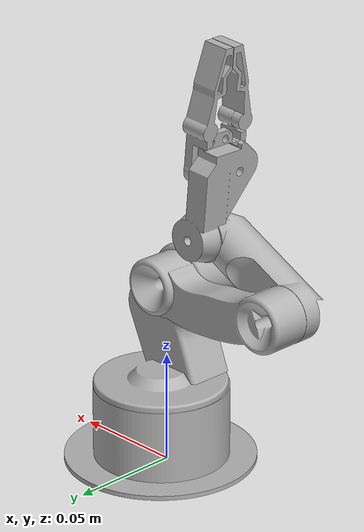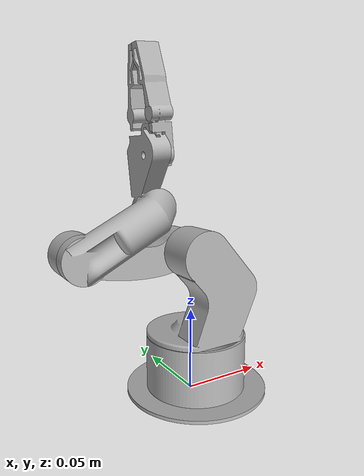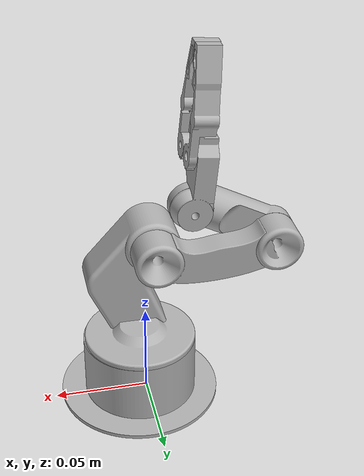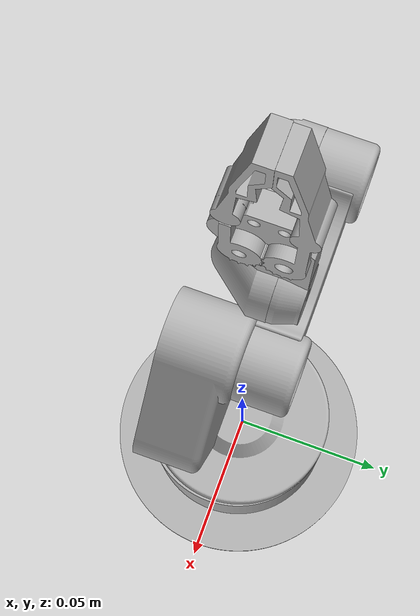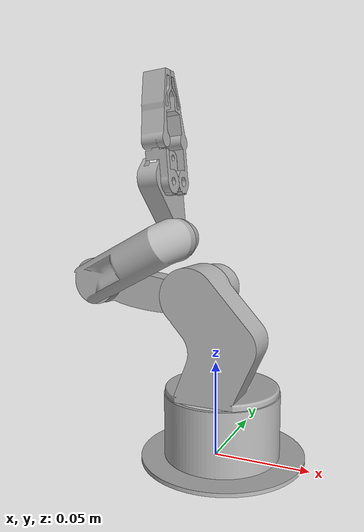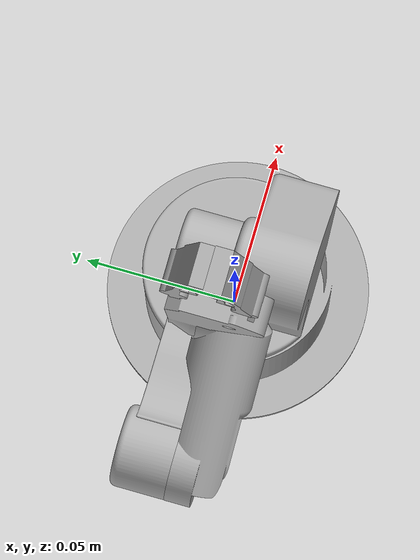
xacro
<?xml version="1.0" ?>
<robot name="tentacle" xmlns:xacro="http://www.ros.org/wiki/xacro">

  <xacro:arg name="is_ignition" default="true"/>

  <xacro:include filename="$(find tentacle_description)/urdf/materials.xacro" />
  <xacro:include filename="$(find tentacle_description)/urdf/tentacle.gazebo" />
  <xacro:include filename="$(find tentacle_description)/urdf/tentacle_gazebo.xacro"/>
  <xacro:include filename="$(find tentacle_description)/urdf/tentacle_ros2_control.xacro" />

  <link name="world"/>

  <link name="base_link">
  <inertial>
    <origin xyz="0.003724544668107693 -4.130614845030881e-05 0.01152842135935003" rpy="0 0 0"/>
    <mass value="0.19623937823714263"/>
    <inertia ixx="0.000109" iyy="0.000113" izz="0.000164" ixy="-0.0" iyz="0.0" ixz="0.0"/>
  </inertial>
  <visual>
    <origin xyz="0 0 0" rpy="0 0 0"/>
    <geometry>
      <mesh filename="file://$(find tentacle_description)/meshes/base_link.stl" scale="0.001 0.001 0.001"/>
    </geometry>
    <material name="silver"/>
  </visual>
  <collision>
    <origin xyz="0 0 0" rpy="0 0 0"/>
    <geometry>
      <mesh filename="file://$(find tentacle_description)/meshes/base_link.stl" scale="0.001 0.001 0.001"/>
    </geometry>
  </collision>
</link>

<link name="center_1">
  <inertial>
    <origin xyz="0.0005464556457603978 -0.009747922577617613 0.024151658053259528" rpy="0 0 0"/>
    <mass value="0.2351503258769467"/>
    <inertia ixx="0.000143" iyy="0.000149" izz="7.6e-05" ixy="1e-06" iyz="2.4e-05" ixz="1.1e-05"/>
  </inertial>
  <visual>
    <origin xyz="-0.003249 -0.000454 -0.035" rpy="0 0 0"/>
    <geometry>
      <mesh filename="file://$(find tentacle_description)/meshes/center_1.stl" scale="0.001 0.001 0.001"/>
    </geometry>
    <material name="silver"/>
  </visual>
  <collision>
    <origin xyz="-0.003249 -0.000454 -0.035" rpy="0 0 0"/>
    <geometry>
      <mesh filename="file://$(find tentacle_description)/meshes/center_1.stl" scale="0.001 0.001 0.001"/>
    </geometry>
  </collision>
</link>

<link name="forearm_1">
  <inertial>
    <origin xyz="-0.031218380690437288 0.007383848756651429 -0.0009929701931967044" rpy="0 0 0"/>
    <mass value="0.19326138616796915"/>
    <inertia ixx="1.2e-05" iyy="0.000131" izz="0.000126" ixy="0.0" iyz="-0.0" ixz="5e-06"/>
  </inertial>
  <visual>
    <origin xyz="0.005216 0.001003 -0.087273" rpy="0 0 0"/>
    <geometry>
      <mesh filename="file://$(find tentacle_description)/meshes/forearm_1.stl" scale="0.001 0.001 0.001"/>
    </geometry>
    <material name="silver"/>
  </visual>
  <collision>
    <origin xyz="0.005216 0.001003 -0.087273" rpy="0 0 0"/>
    <geometry>
      <mesh filename="file://$(find tentacle_description)/meshes/forearm_1.stl" scale="0.001 0.001 0.001"/>
    </geometry>
  </collision>
</link>

<link name="arm_1">
  <inertial>
    <origin xyz="0.023921782876469046 -0.005943519652805075 0.012450684397181486" rpy="0 0 0"/>
    <mass value="0.15653561331279695"/>
    <inertia ixx="1.9e-05" iyy="5.8e-05" izz="4.6e-05" ixy="-0.0" iyz="-0.0" ixz="-1.9e-05"/>
  </inertial>
  <visual>
    <origin xyz="0.067469 0.001003 -0.089531" rpy="0 0 0"/>
    <geometry>
      <mesh filename="file://$(find tentacle_description)/meshes/arm_1.stl" scale="0.001 0.001 0.001"/>
    </geometry>
    <material name="silver"/>
  </visual>
  <collision>
    <origin xyz="0.067469 0.001003 -0.089531" rpy="0 0 0"/>
    <geometry>
      <mesh filename="file://$(find tentacle_description)/meshes/arm_1.stl" scale="0.001 0.001 0.001"/>
    </geometry>
  </collision>
</link>

<link name="gripper_base_1">
  <inertial>
    <origin xyz="-0.004088860440821452 -0.001891194304291763 0.01892345415646901" rpy="0 0 0"/>
    <mass value="0.07836131685763353"/>
    <inertia ixx="1.9e-05" iyy="1.6e-05" izz="6e-06" ixy="-1e-06" iyz="4e-06" ixz="2e-06"/>
  </inertial>
  <visual>
    <origin xyz="0.02352 -0.002316 -0.112573" rpy="0 0 0"/>
    <geometry>
      <mesh filename="file://$(find tentacle_description)/meshes/gripper_base_1.stl" scale="0.001 0.001 0.001"/>
    </geometry>
    <material name="silver"/>
  </visual>
  <collision>
    <origin xyz="0.02352 -0.002316 -0.112573" rpy="0 0 0"/>
    <geometry>
      <mesh filename="file://$(find tentacle_description)/meshes/gripper_base_1.stl" scale="0.001 0.001 0.001"/>
    </geometry>
  </collision>
</link>

<link name="gripper_right_1">
  <inertial>
    <origin xyz="-0.003652078443298134 0.0011147589075419769 0.027391530562665273" rpy="0 0 0"/>
    <mass value="0.020971904838002223"/>
    <inertia ixx="6e-06" iyy="6e-06" izz="1e-06" ixy="-0.0" iyz="1e-06" ixz="1e-06"/>
  </inertial>
  <visual>
    <origin xyz="0.024112 -0.003999 -0.142132" rpy="0 0 0"/>
    <geometry>
      <mesh filename="file://$(find tentacle_description)/meshes/gripper_right_1.stl" scale="0.001 0.001 0.001"/>
    </geometry>
    <material name="silver"/>
  </visual>
  <collision>
    <origin xyz="0.024112 -0.003999 -0.142132" rpy="0 0 0"/>
    <geometry>
      <mesh filename="file://$(find tentacle_description)/meshes/gripper_right_1.stl" scale="0.001 0.001 0.001"/>
    </geometry>
  </collision>
</link>

<link name="gripper_left_1">
  <inertial>
    <origin xyz="-0.0035798722732241946 -0.001068364813392536 0.02708226988197407" rpy="0 0 0"/>
    <mass value="0.021916041795561506"/>
    <inertia ixx="7e-06" iyy="7e-06" izz="1e-06" ixy="0.0" iyz="-1e-06" ixz="1e-06"/>
  </inertial>
  <visual>
    <origin xyz="0.024119 0.008013 -0.142217" rpy="0 0 0"/>
    <geometry>
      <mesh filename="file://$(find tentacle_description)/meshes/gripper_left_1.stl" scale="0.001 0.001 0.001"/>
    </geometry>
    <material name="silver"/>
  </visual>
  <collision>
    <origin xyz="0.024119 0.008013 -0.142217" rpy="0 0 0"/>
    <geometry>
      <mesh filename="file://$(find tentacle_description)/meshes/gripper_left_1.stl" scale="0.001 0.001 0.001"/>
    </geometry>
  </collision>
</link>

<joint name="virtual_joint" type="fixed">
  <parent link="world"/>
  <child link="base_link"/>
  <origin xyz="0 0 0" rpy="0 0 0"/>
</joint>

<joint name="Revolute_1" type="continuous">
  <origin xyz="0.003249 0.000454 0.035" rpy="0 0 0"/>
  <parent link="base_link"/>
  <child link="center_1"/>
  <axis xyz="0.0 0.0 -1.0"/>
</joint>

<joint name="Revolute_2" type="revolute">
  <origin xyz="-0.008465 -0.001457 0.052273" rpy="0 0 0"/>
  <parent link="center_1"/>
  <child link="forearm_1"/>
  <axis xyz="0.0 -1.0 0.0"/>
  <limit upper="0.1" lower="-2.541593" effort="100" velocity="100"/>
</joint>

<joint name="Revolute_3" type="revolute">
  <origin xyz="-0.062253 0.0 0.002258" rpy="0 0 0"/>
  <parent link="forearm_1"/>
  <child link="arm_1"/>
  <axis xyz="-0.0 1.0 -0.0"/>
  <limit upper="0.1" lower="-3.141593" effort="100" velocity="100"/>
</joint>

<joint name="Rigid" type="fixed">
  <origin xyz="0.043949 0.003319 0.023042" rpy="0 0 0"/>
  <parent link="arm_1"/>
  <child link="gripper_base_1"/>
</joint>

<joint name="Revolute_4" type="revolute">
  <origin xyz="-0.000592 0.001683 0.029559" rpy="0 0 0"/>
  <parent link="gripper_base_1"/>
  <child link="gripper_right_1"/>
  <axis xyz="-0.996195 -0.0 -0.087156"/>
  <limit upper="0.785398" lower="0.0" effort="100" velocity="100"/>
</joint>

<joint name="Revolute_5" type="revolute">
  <origin xyz="-0.000599 -0.010329 0.029644" rpy="0 0 0"/>
  <parent link="gripper_base_1"/>
  <child link="gripper_left_1"/>
  <axis xyz="-0.996195 -0.0 -0.087156"/>
  <mimic joint="Revolute_4" multiplier="-1"/>
  <limit upper="0.0" lower="-0.785398" effort="100" velocity="100"/>
</joint>

</robot>

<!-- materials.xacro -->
<robot name="tentacle" xmlns:xacro="http://www.ros.org/wiki/xacro" >

<material name="silver">
  <color rgba="0.700 0.700 0.700 1.000"/>
</material>

</robot>

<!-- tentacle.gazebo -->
<robot name="tentacle" xmlns:xacro="http://www.ros.org/wiki/xacro" >

<xacro:property name="body_color" value="Gazebo/Silver" />

<gazebo reference="base_link">
  <material>${body_color}</material>
  <mu1>0.2</mu1>
  <mu2>0.2</mu2>
  <self_collide>true</self_collide>
  <gravity>true</gravity>
</gazebo>

<gazebo reference="center_1">
  <material>${body_color}</material>
  <mu1>0.2</mu1>
  <mu2>0.2</mu2>
  <self_collide>true</self_collide>
</gazebo>

<gazebo reference="forearm_1">
  <material>${body_color}</material>
  <mu1>0.2</mu1>
  <mu2>0.2</mu2>
  <self_collide>true</self_collide>
</gazebo>

<gazebo reference="arm_1">
  <material>${body_color}</material>
  <mu1>0.2</mu1>
  <mu2>0.2</mu2>
  <self_collide>true</self_collide>
</gazebo>

<gazebo reference="gripper_base_1">
  <material>${body_color}</material>
  <mu1>0.2</mu1>
  <mu2>0.2</mu2>
  <self_collide>true</self_collide>
</gazebo>

<gazebo reference="gripper_right_1">
  <material>${body_color}</material>
  <mu1>0.2</mu1>
  <mu2>0.2</mu2>
  <self_collide>true</self_collide>
</gazebo>

<gazebo reference="gripper_left_1">
  <material>${body_color}</material>
  <mu1>0.2</mu1>
  <mu2>0.2</mu2>
  <self_collide>true</self_collide>
</gazebo>

</robot>
